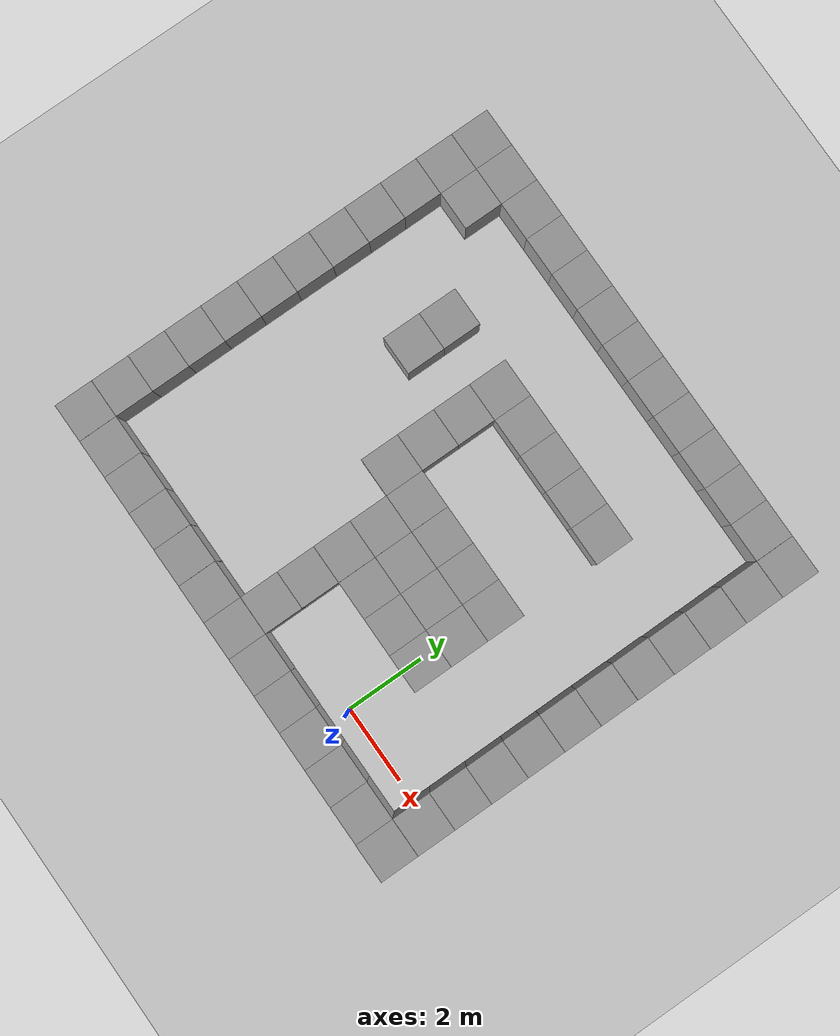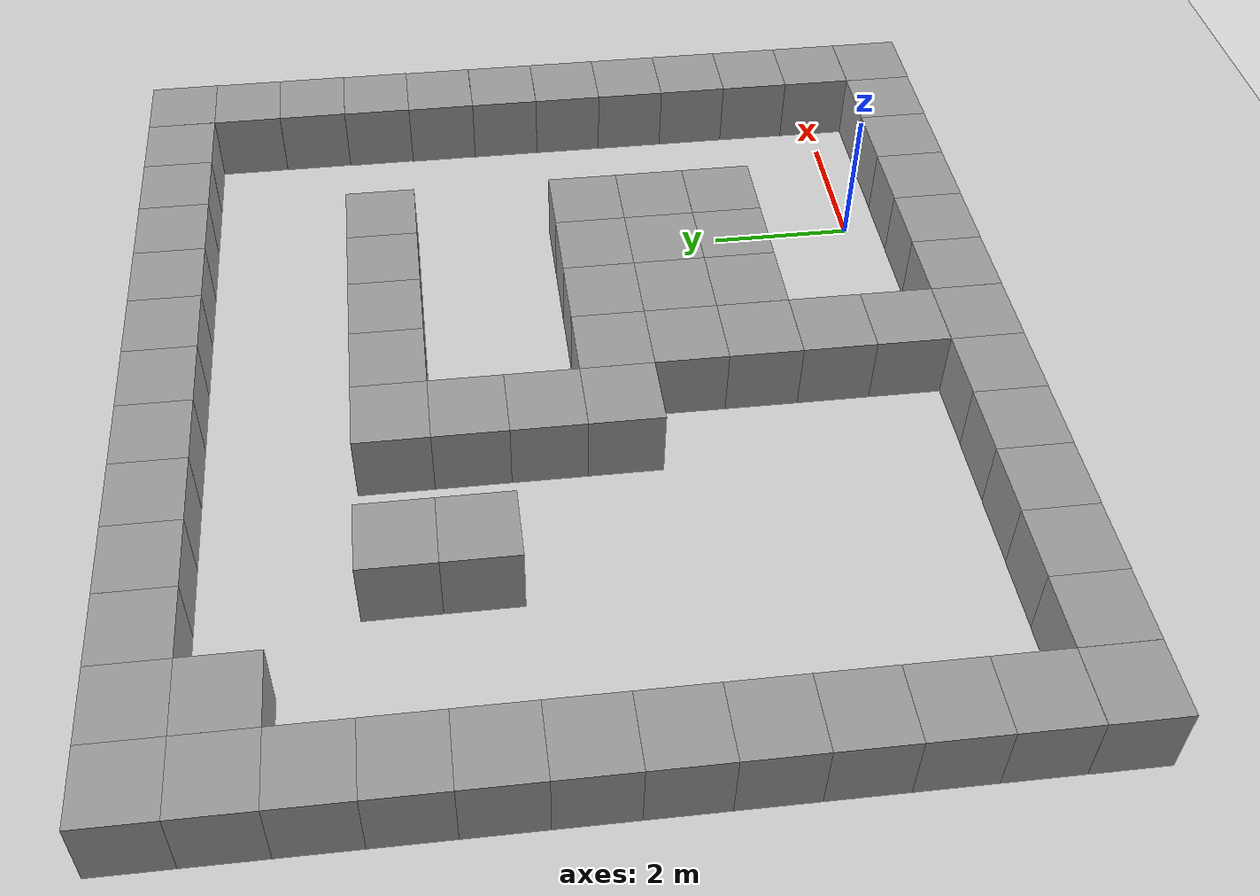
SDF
<sdf version="1.6">
 <world name="default">
  <light name="sun" type="directional">
   <pose>0 0 10 0 -0 0</pose>
   <diffuse>0.8 0.8 0.8 1</diffuse>
   <specular>0.2 0.2 0.2 1</specular>
   <attenuation>
    <range>1000</range>
    <constant>0.9</constant>
    <linear>0.01</linear>
    <quadratic>0.001</quadratic>
   </attenuation>
   <direction>-0.5 0.1 -0.9</direction>
  </light>
  <model name="ground_plane">
   <static>1</static>
   <link name="link">
    <collision name="collision">
     <geometry><plane><normal>0 0 1</normal><size>100 100</size></plane></geometry>
     <surface>
      <contact><collide_bitmask>65535</collide_bitmask></contact>
      <friction><ode><mu>100</mu><mu2>50</mu2></ode></friction>
     </surface>
    </collision>
    <visual name="visual">
     <cast_shadows>0</cast_shadows>
     <geometry><plane><normal>0 0 1</normal><size>100 100</size></plane></geometry>
     <material>
      <script><uri>file://media/materials/scripts/gazebo.material</uri><name>Gazebo/Grey</name></script>
     </material>
    </visual>
   </link>
  </model>
  <gravity>0 0 -9.8</gravity>
  <magnetic_field>6e-06 2.3e-05 -4.2e-05</magnetic_field>
  <atmosphere type="adiabatic"/>
  <physics name="default_physics" default="0" type="ode">
   <max_step_size>0.001</max_step_size>
   <real_time_factor>1</real_time_factor>
   <real_time_update_rate>1000</real_time_update_rate>
  </physics>
  <scene><ambient>0.4 0.4 0.4 1</ambient><background>0.7 0.7 0.7 1</background><shadows>1</shadows></scene>
  <audio><device>default</device></audio>
  <spherical_coordinates>
   <surface_model>EARTH_WGS84</surface_model>
   <latitude_deg>0</latitude_deg>
   <longitude_deg>0</longitude_deg>
   <elevation>0</elevation>
   <heading_deg>0</heading_deg>
  </spherical_coordinates>
  <model name="unit_box">
   <pose>1.00062 -1.00046 0.499995 0 1e-05 0.004028</pose>
   <link name="link">
    <inertial>
     <mass>1</mass>
     <inertia>
      <ixx>0.166667</ixx>
      <ixy>0</ixy>
      <ixz>0</ixz>
      <iyy>0.166667</iyy>
      <iyz>0</iyz>
      <izz>0.166667</izz>
     </inertia>
    </inertial>
    <collision name="collision"><geometry><box><size>1 1 1</size></box></geometry></collision>
    <visual name="visual">
     <geometry><box><size>1 1 1</size></box></geometry>
     <material>
      <script><name>Gazebo/Grey</name><uri>file://media/materials/scripts/gazebo.material</uri></script>
     </material>
    </visual>
   </link>
  </model>
  <model name="unit_box_0">
   <pose>2.00065 -1.00086 0.499995 0 1e-05 0.004051</pose>
   <link name="link">
    <inertial>
     <mass>1</mass>
     <inertia>
      <ixx>0.166667</ixx>
      <ixy>0</ixy>
      <ixz>0</ixz>
      <iyy>0.166667</iyy>
      <iyz>0</iyz>
      <izz>0.166667</izz>
     </inertia>
    </inertial>
    <collision name="collision"><geometry><box><size>1 1 1</size></box></geometry></collision>
    <visual name="visual">
     <geometry><box><size>1 1 1</size></box></geometry>
     <material>
      <script><name>Gazebo/Grey</name><uri>file://media/materials/scripts/gazebo.material</uri></script>
     </material>
    </visual>
   </link>
  </model>
  <model name="unit_box_1">
   <pose>3.00115 -1.00316 0.499995 0 1e-05 0.003325</pose>
   <link name="link">
    <inertial>
     <mass>1</mass>
     <inertia>
      <ixx>0.166667</ixx>
      <ixy>0</ixy>
      <ixz>0</ixz>
      <iyy>0.166667</iyy>
      <iyz>0</iyz>
      <izz>0.166667</izz>
     </inertia>
    </inertial>
    <collision name="collision"><geometry><box><size>1 1 1</size></box></geometry></collision>
    <visual name="visual">
     <geometry><box><size>1 1 1</size></box></geometry>
     <material>
      <script><name>Gazebo/Grey</name><uri>file://media/materials/scripts/gazebo.material</uri></script>
     </material>
    </visual>
   </link>
  </model>
  <model name="unit_box_3">
   <pose>-9.00145 -1.00111 0.5 0 -0 0.002466</pose>
   <link name="link">
    <inertial>
     <mass>1</mass>
     <inertia>
      <ixx>0.166667</ixx>
      <ixy>0</ixy>
      <ixz>0</ixz>
      <iyy>0.166667</iyy>
      <iyz>0</iyz>
      <izz>0.166667</izz>
     </inertia>
    </inertial>
    <collision name="collision"><geometry><box><size>1 1 1</size></box></geometry></collision>
    <visual name="visual">
     <geometry><box><size>1 1 1</size></box></geometry>
     <material>
      <script><name>Gazebo/Grey</name><uri>file://media/materials/scripts/gazebo.material</uri></script>
     </material>
    </visual>
   </link>
  </model>
  <model name="unit_box_2">
   <pose>-8.00038 -0.999682 0.5 0 -0 0.004589</pose>
   <link name="link">
    <inertial>
     <mass>1</mass>
     <inertia>
      <ixx>0.166667</ixx>
      <ixy>0</ixy>
      <ixz>0</ixz>
      <iyy>0.166667</iyy>
      <iyz>0</iyz>
      <izz>0.166667</izz>
     </inertia>
    </inertial>
    <collision name="collision"><geometry><box><size>1 1 1</size></box></geometry></collision>
    <visual name="visual">
     <geometry><box><size>1 1 1</size></box></geometry>
     <material>
      <script><name>Gazebo/Grey</name><uri>file://media/materials/scripts/gazebo.material</uri></script>
     </material>
    </visual>
   </link>
  </model>
  <model name="unit_box_4">
   <pose>-7.00037 -0.999855 0.5 0 -0 0.004593</pose>
   <link name="link">
    <inertial>
     <mass>1</mass>
     <inertia>
      <ixx>0.166667</ixx>
      <ixy>0</ixy>
      <ixz>0</ixz>
      <iyy>0.166667</iyy>
      <iyz>0</iyz>
      <izz>0.166667</izz>
     </inertia>
    </inertial>
    <collision name="collision"><geometry><box><size>1 1 1</size></box></geometry></collision>
    <visual name="visual">
     <geometry><box><size>1 1 1</size></box></geometry>
     <material>
      <script><name>Gazebo/Grey</name><uri>file://media/materials/scripts/gazebo.material</uri></script>
     </material>
    </visual>
   </link>
  </model>
  <model name="unit_box_5">
   <pose>-6.00035 -1.00053 0.499995 -1e-05 0 0.004608</pose>
   <link name="link">
    <inertial>
     <mass>1</mass>
     <inertia>
      <ixx>0.166667</ixx>
      <ixy>0</ixy>
      <ixz>0</ixz>
      <iyy>0.166667</iyy>
      <iyz>0</iyz>
      <izz>0.166667</izz>
     </inertia>
    </inertial>
    <collision name="collision"><geometry><box><size>1 1 1</size></box></geometry></collision>
    <visual name="visual">
     <geometry><box><size>1 1 1</size></box></geometry>
     <material>
      <script><name>Gazebo/Grey</name><uri>file://media/materials/scripts/gazebo.material</uri></script>
     </material>
    </visual>
   </link>
  </model>
  <model name="unit_box_6">
   <pose>-5.00003 -1.00082 0.499995 1e-05 -0 0.004006</pose>
   <link name="link">
    <inertial>
     <mass>1</mass>
     <inertia>
      <ixx>0.166667</ixx>
      <ixy>0</ixy>
      <ixz>0</ixz>
      <iyy>0.166667</iyy>
      <iyz>0</iyz>
      <izz>0.166667</izz>
     </inertia>
    </inertial>
    <collision name="collision"><geometry><box><size>1 1 1</size></box></geometry></collision>
    <visual name="visual">
     <geometry><box><size>1 1 1</size></box></geometry>
     <material>
      <script><name>Gazebo/Grey</name><uri>file://media/materials/scripts/gazebo.material</uri></script>
     </material>
    </visual>
   </link>
  </model>
  <model name="unit_box_7">
   <pose>-3.99986 -1.00158 0.499995 1e-05 -0 0.003714</pose>
   <link name="link">
    <inertial>
     <mass>1</mass>
     <inertia>
      <ixx>0.166667</ixx>
      <ixy>0</ixy>
      <ixz>0</ixz>
      <iyy>0.166667</iyy>
      <iyz>0</iyz>
      <izz>0.166667</izz>
     </inertia>
    </inertial>
    <collision name="collision"><geometry><box><size>1 1 1</size></box></geometry></collision>
    <visual name="visual">
     <geometry><box><size>1 1 1</size></box></geometry>
     <material>
      <script><name>Gazebo/Grey</name><uri>file://media/materials/scripts/gazebo.material</uri></script>
     </material>
    </visual>
   </link>
  </model>
  <model name="unit_box_8">
   <pose>-2.99973 -1.00165 0.5 0 -0 0.003476</pose>
   <link name="link">
    <inertial>
     <mass>1</mass>
     <inertia>
      <ixx>0.166667</ixx>
      <ixy>0</ixy>
      <ixz>0</ixz>
      <iyy>0.166667</iyy>
      <iyz>0</iyz>
      <izz>0.166667</izz>
     </inertia>
    </inertial>
    <collision name="collision"><geometry><box><size>1 1 1</size></box></geometry></collision>
    <visual name="visual">
     <geometry><box><size>1 1 1</size></box></geometry>
     <material>
      <script><name>Gazebo/Grey</name><uri>file://media/materials/scripts/gazebo.material</uri></script>
     </material>
    </visual>
   </link>
  </model>
  <model name="unit_box_9">
   <pose>-1.99944 -0.999955 0.499995 0 -1e-05 0.004007</pose>
   <link name="link">
    <inertial>
     <mass>1</mass>
     <inertia>
      <ixx>0.166667</ixx>
      <ixy>0</ixy>
      <ixz>0</ixz>
      <iyy>0.166667</iyy>
      <iyz>0</iyz>
      <izz>0.166667</izz>
     </inertia>
    </inertial>
    <collision name="collision"><geometry><box><size>1 1 1</size></box></geometry></collision>
    <visual name="visual">
     <geometry><box><size>1 1 1</size></box></geometry>
     <material>
      <script><name>Gazebo/Grey</name><uri>file://media/materials/scripts/gazebo.material</uri></script>
     </material>
    </visual>
   </link>
  </model>
  <model name="unit_box_10">
   <pose>-0.99942 -1.00001 0.499995 0 1e-05 0.004017</pose>
   <link name="link">
    <inertial>
     <mass>1</mass>
     <inertia>
      <ixx>0.166667</ixx>
      <ixy>0</ixy>
      <ixz>0</ixz>
      <iyy>0.166667</iyy>
      <iyz>0</iyz>
      <izz>0.166667</izz>
     </inertia>
    </inertial>
    <collision name="collision"><geometry><box><size>1 1 1</size></box></geometry></collision>
    <visual name="visual">
     <geometry><box><size>1 1 1</size></box></geometry>
     <material>
      <script><name>Gazebo/Grey</name><uri>file://media/materials/scripts/gazebo.material</uri></script>
     </material>
    </visual>
   </link>
  </model>
  <model name="unit_box_11">
   <pose>0.000584 -1.00039 0.499995 0 -1e-05 0.004019</pose>
   <link name="link">
    <inertial>
     <mass>1</mass>
     <inertia>
      <ixx>0.166667</ixx>
      <ixy>0</ixy>
      <ixz>0</ixz>
      <iyy>0.166667</iyy>
      <iyz>0</iyz>
      <izz>0.166667</izz>
     </inertia>
    </inertial>
    <collision name="collision"><geometry><box><size>1 1 1</size></box></geometry></collision>
    <visual name="visual">
     <geometry><box><size>1 1 1</size></box></geometry>
     <material>
      <script><name>Gazebo/Grey</name><uri>file://media/materials/scripts/gazebo.material</uri></script>
     </material>
    </visual>
   </link>
  </model>
  <model name="unit_box_12">
   <pose>-9.00064 1.7e-05 0.5 0 -0 0.000223</pose>
   <link name="link">
    <inertial>
     <mass>1</mass>
     <inertia>
      <ixx>0.166667</ixx>
      <ixy>0</ixy>
      <ixz>0</ixz>
      <iyy>0.166667</iyy>
      <iyz>0</iyz>
      <izz>0.166667</izz>
     </inertia>
    </inertial>
    <collision name="collision"><geometry><box><size>1 1 1</size></box></geometry></collision>
    <visual name="visual">
     <geometry><box><size>1 1 1</size></box></geometry>
     <material>
      <script><name>Gazebo/Grey</name><uri>file://media/materials/scripts/gazebo.material</uri></script>
     </material>
    </visual>
   </link>
  </model>
  <model name="unit_box_15">
   <pose>-3.00118 2.00026 0.499995 0 -1e-05 -0.000279</pose>
   <link name="link">
    <inertial>
     <mass>1</mass>
     <inertia>
      <ixx>0.166667</ixx>
      <ixy>0</ixy>
      <ixz>0</ixz>
      <iyy>0.166667</iyy>
      <iyz>0</iyz>
      <izz>0.166667</izz>
     </inertia>
    </inertial>
    <collision name="collision"><geometry><box><size>1 1 1</size></box></geometry></collision>
    <visual name="visual">
     <geometry><box><size>1 1 1</size></box></geometry>
     <material>
      <script><name>Gazebo/Grey</name><uri>file://media/materials/scripts/gazebo.material</uri></script>
     </material>
    </visual>
   </link>
  </model>
  <model name="unit_box_24">
   <pose>-9.00031 1.00008 0.499995 1e-05 -0 7.9e-05</pose>
   <link name="link">
    <inertial>
     <mass>1</mass>
     <inertia>
      <ixx>0.166667</ixx>
      <ixy>0</ixy>
      <ixz>0</ixz>
      <iyy>0.166667</iyy>
      <iyz>0</iyz>
      <izz>0.166667</izz>
     </inertia>
    </inertial>
    <collision name="collision"><geometry><box><size>1 1 1</size></box></geometry></collision>
    <visual name="visual">
     <geometry><box><size>1 1 1</size></box></geometry>
     <material>
      <script><name>Gazebo/Grey</name><uri>file://media/materials/scripts/gazebo.material</uri></script>
     </material>
    </visual>
   </link>
  </model>
  <model name="unit_box_25">
   <pose>-8.99993 2.0001 0.499995 -0 -1e-05 7.5e-05</pose>
   <link name="link">
    <inertial>
     <mass>1</mass>
     <inertia>
      <ixx>0.166667</ixx>
      <ixy>0</ixy>
      <ixz>0</ixz>
      <iyy>0.166667</iyy>
      <iyz>0</iyz>
      <izz>0.166667</izz>
     </inertia>
    </inertial>
    <collision name="collision"><geometry><box><size>1 1 1</size></box></geometry></collision>
    <visual name="visual">
     <geometry><box><size>1 1 1</size></box></geometry>
     <material>
      <script><name>Gazebo/Grey</name><uri>file://media/materials/scripts/gazebo.material</uri></script>
     </material>
    </visual>
   </link>
  </model>
  <model name="unit_box_30">
   <pose>-9.00003 8.00018 0.499995 -0 -1e-05 0.000168</pose>
   <link name="link">
    <inertial>
     <mass>1</mass>
     <inertia>
      <ixx>0.166667</ixx>
      <ixy>0</ixy>
      <ixz>0</ixz>
      <iyy>0.166667</iyy>
      <iyz>0</iyz>
      <izz>0.166667</izz>
     </inertia>
    </inertial>
    <collision name="collision"><geometry><box><size>1 1 1</size></box></geometry></collision>
    <visual name="visual">
     <geometry><box><size>1 1 1</size></box></geometry>
     <material>
      <script><name>Gazebo/Grey</name><uri>file://media/materials/scripts/gazebo.material</uri></script>
     </material>
    </visual>
   </link>
  </model>
  <model name="unit_box_31">
   <pose>-9.00007 9.00018 0.5 0 -0 0.000166</pose>
   <link name="link">
    <inertial>
     <mass>1</mass>
     <inertia>
      <ixx>0.166667</ixx>
      <ixy>0</ixy>
      <ixz>0</ixz>
      <iyy>0.166667</iyy>
      <iyz>0</iyz>
      <izz>0.166667</izz>
     </inertia>
    </inertial>
    <collision name="collision"><geometry><box><size>1 1 1</size></box></geometry></collision>
    <visual name="visual">
     <geometry><box><size>1 1 1</size></box></geometry>
     <material>
      <script><name>Gazebo/Grey</name><uri>file://media/materials/scripts/gazebo.material</uri></script>
     </material>
    </visual>
   </link>
  </model>
  <model name="unit_box_39">
   <pose>3.00075 -0.002114 0.499995 1e-05 -0 0.001349</pose>
   <link name="link">
    <inertial>
     <mass>1</mass>
     <inertia>
      <ixx>0.166667</ixx>
      <ixy>0</ixy>
      <ixz>0</ixz>
      <iyy>0.166667</iyy>
      <iyz>0</iyz>
      <izz>0.166667</izz>
     </inertia>
    </inertial>
    <collision name="collision"><geometry><box><size>1 1 1</size></box></geometry></collision>
    <visual name="visual">
     <geometry><box><size>1 1 1</size></box></geometry>
     <material>
      <script><name>Gazebo/Grey</name><uri>file://media/materials/scripts/gazebo.material</uri></script>
     </material>
    </visual>
   </link>
  </model>
  <model name="unit_box_40">
   <pose>3.00095 0.997896 0.499995 1e-05 -0 0.001356</pose>
   <link name="link">
    <inertial>
     <mass>1</mass>
     <inertia>
      <ixx>0.166667</ixx>
      <ixy>0</ixy>
      <ixz>0</ixz>
      <iyy>0.166667</iyy>
      <iyz>0</iyz>
      <izz>0.166667</izz>
     </inertia>
    </inertial>
    <collision name="collision"><geometry><box><size>1 1 1</size></box></geometry></collision>
    <visual name="visual">
     <geometry><box><size>1 1 1</size></box></geometry>
     <material>
      <script><name>Gazebo/Grey</name><uri>file://media/materials/scripts/gazebo.material</uri></script>
     </material>
    </visual>
   </link>
  </model>
  <model name="unit_box_41">
   <pose>3.00122 1.99793 0.499995 -1e-05 -0 0.001382</pose>
   <link name="link">
    <inertial>
     <mass>1</mass>
     <inertia>
      <ixx>0.166667</ixx>
      <ixy>0</ixy>
      <ixz>0</ixz>
      <iyy>0.166667</iyy>
      <iyz>0</iyz>
      <izz>0.166667</izz>
     </inertia>
    </inertial>
    <collision name="collision"><geometry><box><size>1 1 1</size></box></geometry></collision>
    <visual name="visual">
     <geometry><box><size>1 1 1</size></box></geometry>
     <material>
      <script><name>Gazebo/Grey</name><uri>file://media/materials/scripts/gazebo.material</uri></script>
     </material>
    </visual>
   </link>
  </model>
  <model name="unit_box_47">
   <pose>2.9992 2.99798 0.499995 1e-05 -0 0.001518</pose>
   <link name="link">
    <inertial>
     <mass>1</mass>
     <inertia>
      <ixx>0.166667</ixx>
      <ixy>0</ixy>
      <ixz>0</ixz>
      <iyy>0.166667</iyy>
      <iyz>0</iyz>
      <izz>0.166667</izz>
     </inertia>
    </inertial>
    <collision name="collision"><geometry><box><size>1 1 1</size></box></geometry></collision>
    <visual name="visual">
     <geometry><box><size>1 1 1</size></box></geometry>
     <material>
      <script><name>Gazebo/Grey</name><uri>file://media/materials/scripts/gazebo.material</uri></script>
     </material>
    </visual>
   </link>
  </model>
  <model name="unit_box_48">
   <pose>2.99795 3.99808 0.499995 -1e-05 -0 0.001668</pose>
   <link name="link">
    <inertial>
     <mass>1</mass>
     <inertia>
      <ixx>0.166667</ixx>
      <ixy>0</ixy>
      <ixz>0</ixz>
      <iyy>0.166667</iyy>
      <iyz>0</iyz>
      <izz>0.166667</izz>
     </inertia>
    </inertial>
    <collision name="collision"><geometry><box><size>1 1 1</size></box></geometry></collision>
    <visual name="visual">
     <geometry><box><size>1 1 1</size></box></geometry>
     <material>
      <script><name>Gazebo/Grey</name><uri>file://media/materials/scripts/gazebo.material</uri></script>
     </material>
    </visual>
   </link>
  </model>
  <model name="unit_box_49">
   <pose>2.99727 4.99873 0.499995 -1e-05 0 0.002966</pose>
   <link name="link">
    <inertial>
     <mass>1</mass>
     <inertia>
      <ixx>0.166667</ixx>
      <ixy>0</ixy>
      <ixz>0</ixz>
      <iyy>0.166667</iyy>
      <iyz>0</iyz>
      <izz>0.166667</izz>
     </inertia>
    </inertial>
    <collision name="collision"><geometry><box><size>1 1 1</size></box></geometry></collision>
    <visual name="visual">
     <geometry><box><size>1 1 1</size></box></geometry>
     <material>
      <script><name>Gazebo/Grey</name><uri>file://media/materials/scripts/gazebo.material</uri></script>
     </material>
    </visual>
   </link>
  </model>
  <model name="unit_box_50">
   <pose>2.99765 6.00089 0.499995 -1e-05 -0 0.007275</pose>
   <link name="link">
    <inertial>
     <mass>1</mass>
     <inertia>
      <ixx>0.166667</ixx>
      <ixy>0</ixy>
      <ixz>0</ixz>
      <iyy>0.166667</iyy>
      <iyz>0</iyz>
      <izz>0.166667</izz>
     </inertia>
    </inertial>
    <collision name="collision"><geometry><box><size>1 1 1</size></box></geometry></collision>
    <visual name="visual">
     <geometry><box><size>1 1 1</size></box></geometry>
     <material>
      <script><name>Gazebo/Grey</name><uri>file://media/materials/scripts/gazebo.material</uri></script>
     </material>
    </visual>
   </link>
  </model>
  <model name="unit_box_51">
   <pose>3.00198 7.00096 0.499995 1e-05 -0 0.007224</pose>
   <link name="link">
    <inertial>
     <mass>1</mass>
     <inertia>
      <ixx>0.166667</ixx>
      <ixy>0</ixy>
      <ixz>0</ixz>
      <iyy>0.166667</iyy>
      <iyz>0</iyz>
      <izz>0.166667</izz>
     </inertia>
    </inertial>
    <collision name="collision"><geometry><box><size>1 1 1</size></box></geometry></collision>
    <visual name="visual">
     <geometry><box><size>1 1 1</size></box></geometry>
     <material>
      <script><name>Gazebo/Grey</name><uri>file://media/materials/scripts/gazebo.material</uri></script>
     </material>
    </visual>
   </link>
  </model>
  <model name="unit_box_52">
   <pose>3.00479 8.00127 0.499995 -1e-05 -0 0.006725</pose>
   <link name="link">
    <inertial>
     <mass>1</mass>
     <inertia>
      <ixx>0.166667</ixx>
      <ixy>0</ixy>
      <ixz>0</ixz>
      <iyy>0.166667</iyy>
      <iyz>0</iyz>
      <izz>0.166667</izz>
     </inertia>
    </inertial>
    <collision name="collision"><geometry><box><size>1 1 1</size></box></geometry></collision>
    <visual name="visual">
     <geometry><box><size>1 1 1</size></box></geometry>
     <material>
      <script><name>Gazebo/Grey</name><uri>file://media/materials/scripts/gazebo.material</uri></script>
     </material>
    </visual>
   </link>
  </model>
  <model name="unit_box_13">
   <pose>-2.99996 1.00005 0.499995 1e-05 -0 7.2e-05</pose>
   <link name="link">
    <inertial>
     <mass>1</mass>
     <inertia>
      <ixx>0.166667</ixx>
      <ixy>0</ixy>
      <ixz>0</ixz>
      <iyy>0.166667</iyy>
      <iyz>0</iyz>
      <izz>0.166667</izz>
     </inertia>
    </inertial>
    <collision name="collision"><geometry><box><size>1 1 1</size></box></geometry></collision>
    <visual name="visual">
     <geometry><box><size>1 1 1</size></box></geometry>
     <material>
      <script><name>Gazebo/Grey</name><uri>file://media/materials/scripts/gazebo.material</uri></script>
     </material>
    </visual>
   </link>
  </model>
  <model name="unit_box_14">
   <pose>-2.99992 5.2e-05 0.499995 0 1e-05 7.3e-05</pose>
   <link name="link">
    <inertial>
     <mass>1</mass>
     <inertia>
      <ixx>0.166667</ixx>
      <ixy>0</ixy>
      <ixz>0</ixz>
      <iyy>0.166667</iyy>
      <iyz>0</iyz>
      <izz>0.166667</izz>
     </inertia>
    </inertial>
    <collision name="collision"><geometry><box><size>1 1 1</size></box></geometry></collision>
    <visual name="visual">
     <geometry><box><size>1 1 1</size></box></geometry>
     <material>
      <script><name>Gazebo/Grey</name><uri>file://media/materials/scripts/gazebo.material</uri></script>
     </material>
    </visual>
   </link>
  </model>
  <model name="unit_box_27">
   <pose>-1.99999 1.99996 0.499995 -1e-05 0 1.5e-05</pose>
   <link name="link">
    <inertial>
     <mass>1</mass>
     <inertia>
      <ixx>0.166667</ixx>
      <ixy>0</ixy>
      <ixz>0</ixz>
      <iyy>0.166667</iyy>
      <iyz>0</iyz>
      <izz>0.166667</izz>
     </inertia>
    </inertial>
    <collision name="collision"><geometry><box><size>1 1 1</size></box></geometry></collision>
    <visual name="visual">
     <geometry><box><size>1 1 1</size></box></geometry>
     <material>
      <script><name>Gazebo/Grey</name><uri>file://media/materials/scripts/gazebo.material</uri></script>
     </material>
    </visual>
   </link>
  </model>
  <model name="unit_box_42">
   <pose>-0.999992 1.99996 0.499995 1e-05 -0 1.4e-05</pose>
   <link name="link">
    <inertial>
     <mass>1</mass>
     <inertia>
      <ixx>0.166667</ixx>
      <ixy>0</ixy>
      <ixz>0</ixz>
      <iyy>0.166667</iyy>
      <iyz>0</iyz>
      <izz>0.166667</izz>
     </inertia>
    </inertial>
    <collision name="collision"><geometry><box><size>1 1 1</size></box></geometry></collision>
    <visual name="visual">
     <geometry><box><size>1 1 1</size></box></geometry>
     <material>
      <script><name>Gazebo/Grey</name><uri>file://media/materials/scripts/gazebo.material</uri></script>
     </material>
    </visual>
   </link>
  </model>
  <model name="unit_box_43">
   <pose>2e-05 1.99998 0.499995 -1e-05 -0 1e-06</pose>
   <link name="link">
    <inertial>
     <mass>1</mass>
     <inertia>
      <ixx>0.166667</ixx>
      <ixy>0</ixy>
      <ixz>0</ixz>
      <iyy>0.166667</iyy>
      <iyz>0</iyz>
      <izz>0.166667</izz>
     </inertia>
    </inertial>
    <collision name="collision"><geometry><box><size>1 1 1</size></box></geometry></collision>
    <visual name="visual">
     <geometry><box><size>1 1 1</size></box></geometry>
     <material>
      <script><name>Gazebo/Grey</name><uri>file://media/materials/scripts/gazebo.material</uri></script>
     </material>
    </visual>
   </link>
  </model>
  <model name="unit_box_44">
   <pose>3.6e-05 3 0.5 -0 -0 -3.4e-05</pose>
   <link name="link">
    <inertial>
     <mass>1</mass>
     <inertia>
      <ixx>0.166667</ixx>
      <ixy>0</ixy>
      <ixz>0</ixz>
      <iyy>0.166667</iyy>
      <iyz>0</iyz>
      <izz>0.166667</izz>
     </inertia>
    </inertial>
    <collision name="collision"><geometry><box><size>1 1 1</size></box></geometry></collision>
    <visual name="visual">
     <geometry><box><size>1 1 1</size></box></geometry>
     <material>
      <script><name>Gazebo/Grey</name><uri>file://media/materials/scripts/gazebo.material</uri></script>
     </material>
    </visual>
   </link>
  </model>
  <model name="unit_box_45">
   <pose>3e-05 4.00004 0.499995 0 -1e-05 -7.7e-05</pose>
   <link name="link">
    <inertial>
     <mass>1</mass>
     <inertia>
      <ixx>0.166667</ixx>
      <ixy>0</ixy>
      <ixz>0</ixz>
      <iyy>0.166667</iyy>
      <iyz>0</iyz>
      <izz>0.166667</izz>
     </inertia>
    </inertial>
    <collision name="collision"><geometry><box><size>1 1 1</size></box></geometry></collision>
    <visual name="visual">
     <geometry><box><size>1 1 1</size></box></geometry>
     <material>
      <script><name>Gazebo/Grey</name><uri>file://media/materials/scripts/gazebo.material</uri></script>
     </material>
    </visual>
   </link>
  </model>
  <model name="unit_box_16">
   <pose>-3.00014 3.00026 0.499995 0 1e-05 -0.000276</pose>
   <link name="link">
    <inertial>
     <mass>1</mass>
     <inertia>
      <ixx>0.166667</ixx>
      <ixy>0</ixy>
      <ixz>0</ixz>
      <iyy>0.166667</iyy>
      <iyz>0</iyz>
      <izz>0.166667</izz>
     </inertia>
    </inertial>
    <collision name="collision"><geometry><box><size>1 1 1</size></box></geometry></collision>
    <visual name="visual">
     <geometry><box><size>1 1 1</size></box></geometry>
     <material>
      <script><name>Gazebo/Grey</name><uri>file://media/materials/scripts/gazebo.material</uri></script>
     </material>
    </visual>
   </link>
  </model>
  <model name="unit_box_17">
   <pose>-3.00005 4.00031 0.499995 1e-05 -0 -0.000188</pose>
   <link name="link">
    <inertial>
     <mass>1</mass>
     <inertia>
      <ixx>0.166667</ixx>
      <ixy>0</ixy>
      <ixz>0</ixz>
      <iyy>0.166667</iyy>
      <iyz>0</iyz>
      <izz>0.166667</izz>
     </inertia>
    </inertial>
    <collision name="collision"><geometry><box><size>1 1 1</size></box></geometry></collision>
    <visual name="visual">
     <geometry><box><size>1 1 1</size></box></geometry>
     <material>
      <script><name>Gazebo/Grey</name><uri>file://media/materials/scripts/gazebo.material</uri></script>
     </material>
    </visual>
   </link>
  </model>
  <model name="unit_box_18">
   <pose>-1.99998 4.00012 0.499995 -1e-05 0 -9.4e-05</pose>
   <link name="link">
    <inertial>
     <mass>1</mass>
     <inertia>
      <ixx>0.166667</ixx>
      <ixy>0</ixy>
      <ixz>0</ixz>
      <iyy>0.166667</iyy>
      <iyz>0</iyz>
      <izz>0.166667</izz>
     </inertia>
    </inertial>
    <collision name="collision"><geometry><box><size>1 1 1</size></box></geometry></collision>
    <visual name="visual">
     <geometry><box><size>1 1 1</size></box></geometry>
     <material>
      <script><name>Gazebo/Grey</name><uri>file://media/materials/scripts/gazebo.material</uri></script>
     </material>
    </visual>
   </link>
  </model>
  <model name="unit_box_19">
   <pose>-0.999971 4.00004 0.5 0 -0 -8.3e-05</pose>
   <link name="link">
    <inertial>
     <mass>1</mass>
     <inertia>
      <ixx>0.166667</ixx>
      <ixy>0</ixy>
      <ixz>0</ixz>
      <iyy>0.166667</iyy>
      <iyz>0</iyz>
      <izz>0.166667</izz>
     </inertia>
    </inertial>
    <collision name="collision"><geometry><box><size>1 1 1</size></box></geometry></collision>
    <visual name="visual">
     <geometry><box><size>1 1 1</size></box></geometry>
     <material>
      <script><name>Gazebo/Grey</name><uri>file://media/materials/scripts/gazebo.material</uri></script>
     </material>
    </visual>
   </link>
  </model>
  <model name="unit_box_20">
   <pose>-0.999972 3.00001 0.499995 -1e-05 -0 -3.6e-05</pose>
   <link name="link">
    <inertial>
     <mass>1</mass>
     <inertia>
      <ixx>0.166667</ixx>
      <ixy>0</ixy>
      <ixz>0</ixz>
      <iyy>0.166667</iyy>
      <iyz>0</iyz>
      <izz>0.166667</izz>
     </inertia>
    </inertial>
    <collision name="collision"><geometry><box><size>1 1 1</size></box></geometry></collision>
    <visual name="visual">
     <geometry><box><size>1 1 1</size></box></geometry>
     <material>
      <script><name>Gazebo/Grey</name><uri>file://media/materials/scripts/gazebo.material</uri></script>
     </material>
    </visual>
   </link>
  </model>
  <model name="unit_box_21">
   <pose>-1.99998 3.00001 0.499995 0 1e-05 -3.6e-05</pose>
   <link name="link">
    <inertial>
     <mass>1</mass>
     <inertia>
      <ixx>0.166667</ixx>
      <ixy>0</ixy>
      <ixz>0</ixz>
      <iyy>0.166667</iyy>
      <iyz>0</iyz>
      <izz>0.166667</izz>
     </inertia>
    </inertial>
    <collision name="collision"><geometry><box><size>1 1 1</size></box></geometry></collision>
    <visual name="visual">
     <geometry><box><size>1 1 1</size></box></geometry>
     <material>
      <script><name>Gazebo/Grey</name><uri>file://media/materials/scripts/gazebo.material</uri></script>
     </material>
    </visual>
   </link>
  </model>
  <model name="unit_box_22">
   <pose>-4.0001 3.99999 0.499995 1e-05 -0 -9.5e-05</pose>
   <link name="link">
    <inertial>
     <mass>1</mass>
     <inertia>
      <ixx>0.166667</ixx>
      <ixy>0</ixy>
      <ixz>0</ixz>
      <iyy>0.166667</iyy>
      <iyz>0</iyz>
      <izz>0.166667</izz>
     </inertia>
    </inertial>
    <collision name="collision"><geometry><box><size>1 1 1</size></box></geometry></collision>
    <visual name="visual">
     <geometry><box><size>1 1 1</size></box></geometry>
     <material>
      <script><name>Gazebo/Grey</name><uri>file://media/materials/scripts/gazebo.material</uri></script>
     </material>
    </visual>
   </link>
  </model>
  <model name="unit_box_46">
   <pose>-4.00004 6.00003 0.5 -0 -0 -3.6e-05</pose>
   <link name="link">
    <inertial>
     <mass>1</mass>
     <inertia>
      <ixx>0.166667</ixx>
      <ixy>0</ixy>
      <ixz>0</ixz>
      <iyy>0.166667</iyy>
      <iyz>0</iyz>
      <izz>0.166667</izz>
     </inertia>
    </inertial>
    <collision name="collision"><geometry><box><size>1 1 1</size></box></geometry></collision>
    <visual name="visual">
     <geometry><box><size>1 1 1</size></box></geometry>
     <material>
      <script><name>Gazebo/Grey</name><uri>file://media/materials/scripts/gazebo.material</uri></script>
     </material>
    </visual>
   </link>
  </model>
  <model name="unit_box_58">
   <pose>-4.00002 7.00003 0.499995 1e-05 -0 -3.1e-05</pose>
   <link name="link">
    <inertial>
     <mass>1</mass>
     <inertia>
      <ixx>0.166667</ixx>
      <ixy>0</ixy>
      <ixz>0</ixz>
      <iyy>0.166667</iyy>
      <iyz>0</iyz>
      <izz>0.166667</izz>
     </inertia>
    </inertial>
    <collision name="collision"><geometry><box><size>1 1 1</size></box></geometry></collision>
    <visual name="visual">
     <geometry><box><size>1 1 1</size></box></geometry>
     <material>
      <script><name>Gazebo/Grey</name><uri>file://media/materials/scripts/gazebo.material</uri></script>
     </material>
    </visual>
   </link>
  </model>
  <model name="unit_box_59">
   <pose>-2.99999 7.00001 0.499995 0 1e-05 -2e-06</pose>
   <link name="link">
    <inertial>
     <mass>1</mass>
     <inertia>
      <ixx>0.166667</ixx>
      <ixy>0</ixy>
      <ixz>0</ixz>
      <iyy>0.166667</iyy>
      <iyz>0</iyz>
      <izz>0.166667</izz>
     </inertia>
    </inertial>
    <collision name="collision"><geometry><box><size>1 1 1</size></box></geometry></collision>
    <visual name="visual">
     <geometry><box><size>1 1 1</size></box></geometry>
     <material>
      <script><name>Gazebo/Grey</name><uri>file://media/materials/scripts/gazebo.material</uri></script>
     </material>
    </visual>
   </link>
  </model>
  <model name="unit_box_60">
   <pose>-1.99999 7.00002 0.499995 -1e-05 -0 -5e-06</pose>
   <link name="link">
    <inertial>
     <mass>1</mass>
     <inertia>
      <ixx>0.166667</ixx>
      <ixy>0</ixy>
      <ixz>0</ixz>
      <iyy>0.166667</iyy>
      <iyz>0</iyz>
      <izz>0.166667</izz>
     </inertia>
    </inertial>
    <collision name="collision"><geometry><box><size>1 1 1</size></box></geometry></collision>
    <visual name="visual">
     <geometry><box><size>1 1 1</size></box></geometry>
     <material>
      <script><name>Gazebo/Grey</name><uri>file://media/materials/scripts/gazebo.material</uri></script>
     </material>
    </visual>
   </link>
  </model>
  <model name="unit_box_61">
   <pose>-0.999989 7.00002 0.499995 1e-05 -0 2e-06</pose>
   <link name="link">
    <inertial>
     <mass>1</mass>
     <inertia>
      <ixx>0.166667</ixx>
      <ixy>0</ixy>
      <ixz>0</ixz>
      <iyy>0.166667</iyy>
      <iyz>0</iyz>
      <izz>0.166667</izz>
     </inertia>
    </inertial>
    <collision name="collision"><geometry><box><size>1 1 1</size></box></geometry></collision>
    <visual name="visual">
     <geometry><box><size>1 1 1</size></box></geometry>
     <material>
      <script><name>Gazebo/Grey</name><uri>file://media/materials/scripts/gazebo.material</uri></script>
     </material>
    </visual>
   </link>
  </model>
  <model name="unit_box_62">
   <pose>1.6e-05 6.99998 0.499995 1e-05 -0 6e-06</pose>
   <link name="link">
    <inertial>
     <mass>1</mass>
     <inertia>
      <ixx>0.166667</ixx>
      <ixy>0</ixy>
      <ixz>0</ixz>
      <iyy>0.166667</iyy>
      <iyz>0</iyz>
      <izz>0.166667</izz>
     </inertia>
    </inertial>
    <collision name="collision"><geometry><box><size>1 1 1</size></box></geometry></collision>
    <visual name="visual">
     <geometry><box><size>1 1 1</size></box></geometry>
     <material>
      <script><name>Gazebo/Grey</name><uri>file://media/materials/scripts/gazebo.material</uri></script>
     </material>
    </visual>
   </link>
  </model>
  <model name="unit_box_63">
   <pose>-6.00002 6 0.499995 0 -1e-05 4e-06</pose>
   <link name="link">
    <inertial>
     <mass>1</mass>
     <inertia>
      <ixx>0.166667</ixx>
      <ixy>0</ixy>
      <ixz>0</ixz>
      <iyy>0.166667</iyy>
      <iyz>0</iyz>
      <izz>0.166667</izz>
     </inertia>
    </inertial>
    <collision name="collision"><geometry><box><size>1 1 1</size></box></geometry></collision>
    <visual name="visual">
     <geometry><box><size>1 1 1</size></box></geometry>
     <material>
      <script><name>Gazebo/Grey</name><uri>file://media/materials/scripts/gazebo.material</uri></script>
     </material>
    </visual>
   </link>
  </model>
  <model name="unit_box_23">
   <pose>-6 7.00002 0.499995 -1e-05 -0 4e-06</pose>
   <link name="link">
    <inertial>
     <mass>1</mass>
     <inertia>
      <ixx>0.166667</ixx>
      <ixy>0</ixy>
      <ixz>0</ixz>
      <iyy>0.166667</iyy>
      <iyz>0</iyz>
      <izz>0.166667</izz>
     </inertia>
    </inertial>
    <collision name="collision"><geometry><box><size>1 1 1</size></box></geometry></collision>
    <visual name="visual">
     <geometry><box><size>1 1 1</size></box></geometry>
     <material>
      <script><name>Gazebo/Grey</name><uri>file://media/materials/scripts/gazebo.material</uri></script>
     </material>
    </visual>
   </link>
  </model>
  <model name="unit_box_28">
   <pose>3.00059 9.00222 0.499995 -1e-05 0 0.004805</pose>
   <link name="link">
    <inertial>
     <mass>1</mass>
     <inertia>
      <ixx>0.166667</ixx>
      <ixy>0</ixy>
      <ixz>0</ixz>
      <iyy>0.166667</iyy>
      <iyz>0</iyz>
      <izz>0.166667</izz>
     </inertia>
    </inertial>
    <collision name="collision"><geometry><box><size>1 1 1</size></box></geometry></collision>
    <visual name="visual">
     <geometry><box><size>1 1 1</size></box></geometry>
     <material>
      <script><name>Gazebo/Grey</name><uri>file://media/materials/scripts/gazebo.material</uri></script>
     </material>
    </visual>
   </link>
  </model>
  <model name="unit_box_29">
   <pose>3.00148 10.0029 0.499995 -0 -1e-05 0.003519</pose>
   <link name="link">
    <inertial>
     <mass>1</mass>
     <inertia>
      <ixx>0.166667</ixx>
      <ixy>0</ixy>
      <ixz>0</ixz>
      <iyy>0.166667</iyy>
      <iyz>0</iyz>
      <izz>0.166667</izz>
     </inertia>
    </inertial>
    <collision name="collision"><geometry><box><size>1 1 1</size></box></geometry></collision>
    <visual name="visual">
     <geometry><box><size>1 1 1</size></box></geometry>
     <material>
      <script><name>Gazebo/Grey</name><uri>file://media/materials/scripts/gazebo.material</uri></script>
     </material>
    </visual>
   </link>
  </model>
  <model name="unit_box_37">
   <pose>2.00005 10.0002 0.499995 0 9e-06 0.000636</pose>
   <link name="link">
    <inertial>
     <mass>1</mass>
     <inertia>
      <ixx>0.166667</ixx>
      <ixy>0</ixy>
      <ixz>0</ixz>
      <iyy>0.166667</iyy>
      <iyz>0</iyz>
      <izz>0.166667</izz>
     </inertia>
    </inertial>
    <collision name="collision"><geometry><box><size>1 1 1</size></box></geometry></collision>
    <visual name="visual">
     <geometry><box><size>1 1 1</size></box></geometry>
     <material>
      <script><name>Gazebo/Grey</name><uri>file://media/materials/scripts/gazebo.material</uri></script>
     </material>
    </visual>
   </link>
  </model>
  <model name="unit_box_38">
   <pose>0.999975 10.0001 0.499995 0 -1e-05 0.000509</pose>
   <link name="link">
    <inertial>
     <mass>1</mass>
     <inertia>
      <ixx>0.166667</ixx>
      <ixy>0</ixy>
      <ixz>0</ixz>
      <iyy>0.166667</iyy>
      <iyz>0</iyz>
      <izz>0.166667</izz>
     </inertia>
    </inertial>
    <collision name="collision"><geometry><box><size>1 1 1</size></box></geometry></collision>
    <visual name="visual">
     <geometry><box><size>1 1 1</size></box></geometry>
     <material>
      <script><name>Gazebo/Grey</name><uri>file://media/materials/scripts/gazebo.material</uri></script>
     </material>
    </visual>
   </link>
  </model>
  <model name="unit_box_53">
   <pose>-6.9e-05 10.0003 0.499995 1e-05 -0 0.000418</pose>
   <link name="link">
    <inertial>
     <mass>1</mass>
     <inertia>
      <ixx>0.166667</ixx>
      <ixy>0</ixy>
      <ixz>0</ixz>
      <iyy>0.166667</iyy>
      <iyz>0</iyz>
      <izz>0.166667</izz>
     </inertia>
    </inertial>
    <collision name="collision"><geometry><box><size>1 1 1</size></box></geometry></collision>
    <visual name="visual">
     <geometry><box><size>1 1 1</size></box></geometry>
     <material>
      <script><name>Gazebo/Grey</name><uri>file://media/materials/scripts/gazebo.material</uri></script>
     </material>
    </visual>
   </link>
  </model>
  <model name="unit_box_54">
   <pose>-1.0001 10.0004 0.499995 1e-05 -0 0.000364</pose>
   <link name="link">
    <inertial>
     <mass>1</mass>
     <inertia>
      <ixx>0.166667</ixx>
      <ixy>0</ixy>
      <ixz>0</ixz>
      <iyy>0.166667</iyy>
      <iyz>0</iyz>
      <izz>0.166667</izz>
     </inertia>
    </inertial>
    <collision name="collision"><geometry><box><size>1 1 1</size></box></geometry></collision>
    <visual name="visual">
     <geometry><box><size>1 1 1</size></box></geometry>
     <material>
      <script><name>Gazebo/Grey</name><uri>file://media/materials/scripts/gazebo.material</uri></script>
     </material>
    </visual>
   </link>
  </model>
  <model name="unit_box_55">
   <pose>-2.00016 10.0003 0.499995 -1e-05 0 0.000241</pose>
   <link name="link">
    <inertial>
     <mass>1</mass>
     <inertia>
      <ixx>0.166667</ixx>
      <ixy>0</ixy>
      <ixz>0</ixz>
      <iyy>0.166667</iyy>
      <iyz>0</iyz>
      <izz>0.166667</izz>
     </inertia>
    </inertial>
    <collision name="collision"><geometry><box><size>1 1 1</size></box></geometry></collision>
    <visual name="visual">
     <geometry><box><size>1 1 1</size></box></geometry>
     <material>
      <script><name>Gazebo/Grey</name><uri>file://media/materials/scripts/gazebo.material</uri></script>
     </material>
    </visual>
   </link>
  </model>
  <model name="unit_box_56">
   <pose>-3.00016 10.0001 0.499995 1e-05 -0 0.000241</pose>
   <link name="link">
    <inertial>
     <mass>1</mass>
     <inertia>
      <ixx>0.166667</ixx>
      <ixy>0</ixy>
      <ixz>0</ixz>
      <iyy>0.166667</iyy>
      <iyz>0</iyz>
      <izz>0.166667</izz>
     </inertia>
    </inertial>
    <collision name="collision"><geometry><box><size>1 1 1</size></box></geometry></collision>
    <visual name="visual">
     <geometry><box><size>1 1 1</size></box></geometry>
     <material>
      <script><name>Gazebo/Grey</name><uri>file://media/materials/scripts/gazebo.material</uri></script>
     </material>
    </visual>
   </link>
  </model>
  <model name="unit_box_32">
   <pose>-9.0002 10.0002 0.5 0 -0 0.000206</pose>
   <link name="link">
    <inertial>
     <mass>1</mass>
     <inertia>
      <ixx>0.166667</ixx>
      <ixy>0</ixy>
      <ixz>0</ixz>
      <iyy>0.166667</iyy>
      <iyz>0</iyz>
      <izz>0.166667</izz>
     </inertia>
    </inertial>
    <collision name="collision"><geometry><box><size>1 1 1</size></box></geometry></collision>
    <visual name="visual">
     <geometry><box><size>1 1 1</size></box></geometry>
     <material>
      <script><name>Gazebo/Grey</name><uri>file://media/materials/scripts/gazebo.material</uri></script>
     </material>
    </visual>
   </link>
  </model>
  <model name="unit_box_33">
   <pose>-8.00018 10 0.499995 -1e-05 -0 0.000229</pose>
   <link name="link">
    <inertial>
     <mass>1</mass>
     <inertia>
      <ixx>0.166667</ixx>
      <ixy>0</ixy>
      <ixz>0</ixz>
      <iyy>0.166667</iyy>
      <iyz>0</iyz>
      <izz>0.166667</izz>
     </inertia>
    </inertial>
    <collision name="collision"><geometry><box><size>1 1 1</size></box></geometry></collision>
    <visual name="visual">
     <geometry><box><size>1 1 1</size></box></geometry>
     <material>
      <script><name>Gazebo/Grey</name><uri>file://media/materials/scripts/gazebo.material</uri></script>
     </material>
    </visual>
   </link>
  </model>
  <model name="unit_box_34">
   <pose>-7.00018 10.0001 0.5 0 -0 0.000232</pose>
   <link name="link">
    <inertial>
     <mass>1</mass>
     <inertia>
      <ixx>0.166667</ixx>
      <ixy>0</ixy>
      <ixz>0</ixz>
      <iyy>0.166667</iyy>
      <iyz>0</iyz>
      <izz>0.166667</izz>
     </inertia>
    </inertial>
    <collision name="collision"><geometry><box><size>1 1 1</size></box></geometry></collision>
    <visual name="visual">
     <geometry><box><size>1 1 1</size></box></geometry>
     <material>
      <script><name>Gazebo/Grey</name><uri>file://media/materials/scripts/gazebo.material</uri></script>
     </material>
    </visual>
   </link>
  </model>
  <model name="unit_box_35">
   <pose>-6.00017 10.0001 0.5 0 -0 0.000231</pose>
   <link name="link">
    <inertial>
     <mass>1</mass>
     <inertia>
      <ixx>0.166667</ixx>
      <ixy>0</ixy>
      <ixz>0</ixz>
      <iyy>0.166667</iyy>
      <iyz>0</iyz>
      <izz>0.166667</izz>
     </inertia>
    </inertial>
    <collision name="collision"><geometry><box><size>1 1 1</size></box></geometry></collision>
    <visual name="visual">
     <geometry><box><size>1 1 1</size></box></geometry>
     <material>
      <script><name>Gazebo/Grey</name><uri>file://media/materials/scripts/gazebo.material</uri></script>
     </material>
    </visual>
   </link>
  </model>
  <model name="unit_box_57">
   <pose>-5.00017 10.0003 0.5 0 -0 0.000235</pose>
   <link name="link">
    <inertial>
     <mass>1</mass>
     <inertia>
      <ixx>0.166667</ixx>
      <ixy>0</ixy>
      <ixz>0</ixz>
      <iyy>0.166667</iyy>
      <iyz>0</iyz>
      <izz>0.166667</izz>
     </inertia>
    </inertial>
    <collision name="collision"><geometry><box><size>1 1 1</size></box></geometry></collision>
    <visual name="visual">
     <geometry><box><size>1 1 1</size></box></geometry>
     <material>
      <script><name>Gazebo/Grey</name><uri>file://media/materials/scripts/gazebo.material</uri></script>
     </material>
    </visual>
   </link>
  </model>
  <model name="unit_box_64">
   <pose>-4.00017 10.0001 0.5 0 -0 0.000237</pose>
   <link name="link">
    <inertial>
     <mass>1</mass>
     <inertia>
      <ixx>0.166667</ixx>
      <ixy>0</ixy>
      <ixz>0</ixz>
      <iyy>0.166667</iyy>
      <iyz>0</iyz>
      <izz>0.166667</izz>
     </inertia>
    </inertial>
    <collision name="collision"><geometry><box><size>1 1 1</size></box></geometry></collision>
    <visual name="visual">
     <geometry><box><size>1 1 1</size></box></geometry>
     <material>
      <script><name>Gazebo/Grey</name><uri>file://media/materials/scripts/gazebo.material</uri></script>
     </material>
    </visual>
   </link>
  </model>
  <model name="unit_box_65">
   <pose>-7.99994 8.99994 0.5 0 -0 0.000104</pose>
   <link name="link">
    <inertial>
     <mass>1</mass>
     <inertia>
      <ixx>0.166667</ixx>
      <ixy>0</ixy>
      <ixz>0</ixz>
      <iyy>0.166667</iyy>
      <iyz>0</iyz>
      <izz>0.166667</izz>
     </inertia>
    </inertial>
    <collision name="collision"><geometry><box><size>1 1 1</size></box></geometry></collision>
    <visual name="visual">
     <geometry><box><size>1 1 1</size></box></geometry>
     <material>
      <script><name>Gazebo/Grey</name><uri>file://media/materials/scripts/gazebo.material</uri></script>
     </material>
    </visual>
   </link>
  </model>
  <model name="unit_box_36">
   <pose>-9.00006 7.00016 0.5 0 -0 0.000142</pose>
   <link name="link">
    <inertial>
     <mass>1</mass>
     <inertia>
      <ixx>0.166667</ixx>
      <ixy>0</ixy>
      <ixz>0</ixz>
      <iyy>0.166667</iyy>
      <iyz>0</iyz>
      <izz>0.166667</izz>
     </inertia>
    </inertial>
    <collision name="collision"><geometry><box><size>1 1 1</size></box></geometry></collision>
    <visual name="visual">
     <geometry><box><size>1 1 1</size></box></geometry>
     <material>
      <script><name>Gazebo/Grey</name><uri>file://media/materials/scripts/gazebo.material</uri></script>
     </material>
    </visual>
   </link>
  </model>
  <model name="unit_box_66">
   <pose>-8.99997 6.00014 0.499995 0 1e-05 0.000113</pose>
   <link name="link">
    <inertial>
     <mass>1</mass>
     <inertia>
      <ixx>0.166667</ixx>
      <ixy>0</ixy>
      <ixz>0</ixz>
      <iyy>0.166667</iyy>
      <iyz>0</iyz>
      <izz>0.166667</izz>
     </inertia>
    </inertial>
    <collision name="collision"><geometry><box><size>1 1 1</size></box></geometry></collision>
    <visual name="visual">
     <geometry><box><size>1 1 1</size></box></geometry>
     <material>
      <script><name>Gazebo/Grey</name><uri>file://media/materials/scripts/gazebo.material</uri></script>
     </material>
    </visual>
   </link>
  </model>
  <model name="unit_box_26">
   <pose>-9 5.00011 0.499995 -1e-05 -0 7.6e-05</pose>
   <link name="link">
    <inertial>
     <mass>1</mass>
     <inertia>
      <ixx>0.166667</ixx>
      <ixy>0</ixy>
      <ixz>0</ixz>
      <iyy>0.166667</iyy>
      <iyz>0</iyz>
      <izz>0.166667</izz>
     </inertia>
    </inertial>
    <collision name="collision"><geometry><box><size>1 1 1</size></box></geometry></collision>
    <visual name="visual">
     <geometry><box><size>1 1 1</size></box></geometry>
     <material>
      <script><name>Gazebo/Grey</name><uri>file://media/materials/scripts/gazebo.material</uri></script>
     </material>
    </visual>
   </link>
  </model>
  <model name="unit_box_67">
   <pose>-9.00002 4.0001 0.49998 1e-06 -0 7.4e-05</pose>
   <link name="link">
    <inertial>
     <mass>1</mass>
     <inertia>
      <ixx>0.166667</ixx>
      <ixy>0</ixy>
      <ixz>0</ixz>
      <iyy>0.166667</iyy>
      <iyz>0</iyz>
      <izz>0.166667</izz>
     </inertia>
    </inertial>
    <collision name="collision"><geometry><box><size>1 1 1</size></box></geometry></collision>
    <visual name="visual">
     <geometry><box><size>1 1 1</size></box></geometry>
     <material>
      <script><name>Gazebo/Grey</name><uri>file://media/materials/scripts/gazebo.material</uri></script>
     </material>
    </visual>
   </link>
  </model>
  <model name="unit_box_68">
   <pose>-8.99992 3.0001 0.5 -1e-06 -0 7.9e-05</pose>
   <link name="link">
    <inertial>
     <mass>1</mass>
     <inertia>
      <ixx>0.166667</ixx>
      <ixy>0</ixy>
      <ixz>0</ixz>
      <iyy>0.166667</iyy>
      <iyz>0</iyz>
      <izz>0.166667</izz>
     </inertia>
    </inertial>
    <collision name="collision"><geometry><box><size>1 1 1</size></box></geometry></collision>
    <visual name="visual">
     <geometry><box><size>1 1 1</size></box></geometry>
     <material>
      <script><name>Gazebo/Grey</name><uri>file://media/materials/scripts/gazebo.material</uri></script>
     </material>
    </visual>
   </link>
  </model>
  <model name="unit_box_69">
   <pose>-3.99999 5.00003 0.499995 0 -1e-05 -3.7e-05</pose>
   <link name="link">
    <inertial>
     <mass>1</mass>
     <inertia>
      <ixx>0.166667</ixx>
      <ixy>0</ixy>
      <ixz>0</ixz>
      <iyy>0.166667</iyy>
      <iyz>0</iyz>
      <izz>0.166667</izz>
     </inertia>
    </inertial>
    <collision name="collision"><geometry><box><size>1 1 1</size></box></geometry></collision>
    <visual name="visual">
     <geometry><box><size>1 1 1</size></box></geometry>
     <material>
      <script><name>Gazebo/Grey</name><uri>file://media/materials/scripts/gazebo.material</uri></script>
     </material>
    </visual>
   </link>
  </model>
 </world>
</sdf>
